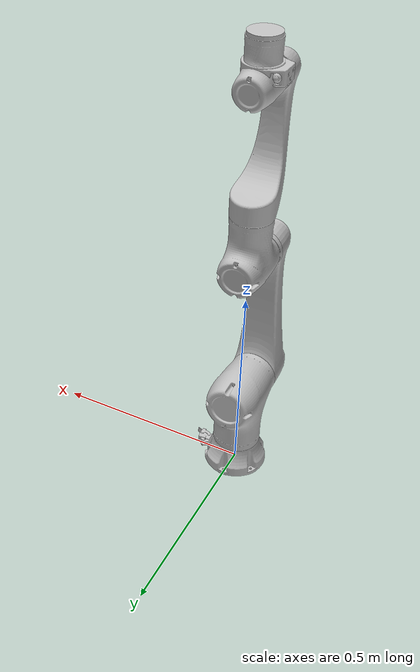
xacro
<robot
  name="elfin5" xmlns:xacro="http://www.ros.org/wiki/xacro">

  <xacro:include filename="$(find elfin_description)/urdf/materials.xacro" />

  <xacro:include filename="$(find elfin_description)/urdf/elfin_robot.gazebo" />

  <xacro:include filename="$(find elfin_description)/urdf/elfin_transmission.xacro" />

  <xacro:property name="PI" value="3.1415926535897931"/>

  <xacro:property name="density" value="3.09"/>

  <link name="world"/>

  <joint name="world_base" type="fixed">
    <origin
      xyz="0 0 0"
      rpy="0 0 0" />
    <parent
      link="world" />
    <child
      link="elfin_base_link" />
  </joint>

  <link name="elfin_base_link"/>

  <joint name="elfin_base_joint" type="fixed">
    <origin
      xyz="0 0 0"
      rpy="0 0 0" />
    <parent
      link="elfin_base_link" />
    <child
      link="elfin_base" />
  </joint>

   <link
    name="elfin_base">
    <inertial>
      <origin
        xyz="-0.000763828012447035 5.78534761012293E-06 0.0304416599943415"
        rpy="0 0 0" />
      <mass
        value="0.970239706050223" />
      <inertia
        ixx="0.00157696245666968"
        ixy="1.16231027909909E-07"
        ixz="-2.16838482265701E-05"
        iyy="0.00144565496079807"
        iyz="-6.75796232258151E-08"
        izz="0.00236570554301517" />
    </inertial>
    <visual>
      <origin
        xyz="0 0 0"
        rpy="0 0 0" />
      <geometry>
        <mesh
          filename="package://elfin_description/meshes/elfin5/elfin_base.STL" />
      </geometry>
      <material
        name="">
        <color
          rgba="0.752941176470588 0.752941176470588 0.752941176470588 1" />
      </material>
    </visual>
    <collision>
      <origin
        xyz="0 0 0"
        rpy="0 0 0" />
      <geometry>
        <mesh
          filename="package://elfin_description/meshes/elfin5/elfin_base.STL" />
      </geometry>
    </collision>
  </link>
  <link
    name="elfin_link1">
    <inertial>
      <origin
        xyz="2.74291280953301E-06 -0.00431106908088009 -0.0357493000420958"
        rpy="0 0 0" />
      <mass
        value="3.25128102774055" />
      <inertia
        ixx="0.0131139015939654"
        ixy="1.53830686193548E-07"
        ixz="4.14641049481189E-07"
        iyy="0.0123861178713592"
        iyz="0.00240614664669851"
        izz="0.00712273876232631" />
    </inertial>
    <visual>
      <origin
        xyz="0 0 0"
        rpy="0 0 0" />
      <geometry>
        <mesh
          filename="package://elfin_description/meshes/elfin5/elfin_link1.STL" />
      </geometry>
      <material
        name="">
        <color
          rgba="0.752941176470588 0.752941176470588 0.752941176470588 1" />
      </material>
    </visual>
    <collision>
      <origin
        xyz="0 0 0"
        rpy="0 0 0" />
      <geometry>
        <mesh
          filename="package://elfin_description/meshes/elfin5/elfin_link1.STL" />
      </geometry>
    </collision>
  </link>
  <joint
    name="elfin_joint1"
    type="revolute">
    <origin
      xyz="0 0 0.22"
      rpy="0 0 0" />
    <parent
      link="elfin_base" />
    <child
      link="elfin_link1" />
    <axis
      xyz="0 0 1" />
    <limit
      lower="-3.14"
      upper="3.14"
      effort="420"
      velocity="1.57" />
  </joint>
  <link
    name="elfin_link2">
    <inertial>
      <origin
        xyz="-4.61141935425826E-06 0.1591743105703 0.127676233728645"
        rpy="0 0 0" />
      <mass
        value="2.80251415493372" />
      <inertia
        ixx="0.0472004127058612"
        ixy="-3.78127975165949E-06"
        ixz="2.96484076164975E-07"
        iyy="0.00279445987467469"
        iyz="0.0015424585085081"
        izz="0.0478757132444163" />
    </inertial>
    <visual>
      <origin
        xyz="0 0 0"
        rpy="0 0 0" />
      <geometry>
        <mesh
          filename="package://elfin_description/meshes/elfin5/elfin_link2.STL" />
      </geometry>
      <material
        name="">
        <color
          rgba="0.752941176470588 0.752941176470588 0.752941176470588 1" />
      </material>
    </visual>
    <collision>
      <origin
        xyz="0 0 0"
        rpy="0 0 0" />
      <geometry>
        <mesh
          filename="package://elfin_description/meshes/elfin5/elfin_link2.STL" />
      </geometry>
    </collision>
  </link>
  <joint
    name="elfin_joint2"
    type="revolute">
    <origin
      xyz="0 0 0"
      rpy="1.5708 0 0" />
    <parent
      link="elfin_link1" />
    <child
      link="elfin_link2" />
    <axis
      xyz="0 0 1" />
    <limit
      lower="-2.35"
      upper="2.35"
      effort="420"
      velocity="1.57" />
  </joint>
  <link
    name="elfin_link3">
    <inertial>
      <origin
        xyz="0.0290082764878195 8.22344830496747E-06 -0.00396673307172194"
        rpy="0 0 0" />
      <mass
        value="1.985771603253" />
      <inertia
        ixx="0.00325219349943707"
        ixy="-2.70050556242264E-07"
        ixz="-0.00114506857457687"
        iyy="0.00594604197825752"
        iyz="7.00611683851371E-07"
        izz="0.00528005541994704" />
    </inertial>
    <visual>
      <origin
        xyz="0 0 0"
        rpy="0 0 0" />
      <geometry>
        <mesh
          filename="package://elfin_description/meshes/elfin5/elfin_link3.STL" />
      </geometry>
      <material
        name="">
        <color
          rgba="0.752941176470588 0.752941176470588 0.752941176470588 1" />
      </material>
    </visual>
    <collision>
      <origin
        xyz="0 0 0"
        rpy="0 0 0" />
      <geometry>
        <mesh
          filename="package://elfin_description/meshes/elfin5/elfin_link3.STL" />
      </geometry>
    </collision>
  </link>
  <joint
    name="elfin_joint3"
    type="revolute">
    <origin
      xyz="0 0.38 0"
      rpy="3.1416 0 1.5708" />
    <parent
      link="elfin_link2" />
    <child
      link="elfin_link3" />
    <axis
      xyz="0 0 1" />
    <limit
      lower="-2.61"
      upper="2.61"
      effort="200"
      velocity="1.57" />
  </joint>
  <link
    name="elfin_link4">
    <inertial>
      <origin
        xyz="-3.37325284266827E-05 -0.059246634833044 0.248712399920572"
        rpy="0 0 0" />
      <mass
        value="1.3966627675706" />
      <inertia
        ixx="0.0146417786566676"
        ixy="-1.72570245202171E-06"
        ixz="6.27583250069289E-06"
        iyy="0.0128389262643824"
        iyz="0.00385606704922265"
        izz="0.00311370666742545" />
    </inertial>
    <visual>
      <origin
        xyz="0 0 0"
        rpy="0 0 0" />
      <geometry>
        <mesh
          filename="package://elfin_description/meshes/elfin5/elfin_link4.STL" />
      </geometry>
      <material
        name="">
        <color
          rgba="0.752941176470588 0.752941176470588 0.752941176470588 1" />
      </material>
    </visual>
    <collision>
      <origin
        xyz="0 0 0"
        rpy="0 0 0" />
      <geometry>
        <mesh
          filename="package://elfin_description/meshes/elfin5/elfin_link4.STL" />
      </geometry>
    </collision>
  </link>
  <joint
    name="elfin_joint4"
    type="revolute">
    <origin
      xyz="0 0 0"
      rpy="1.5708 0 1.5708" />
    <parent
      link="elfin_link3" />
    <child
      link="elfin_link4" />
    <axis
      xyz="0 0 1" />
    <limit
      lower="-3.14"
      upper="3.14"
      effort="200"
      velocity="1.57" />
  </joint>
  <link
    name="elfin_link5">
    <inertial>
      <origin
        xyz="-1.05027528186624E-06 -0.0219935502961173 -0.00313939707023243"
        rpy="0 0 0" />
      <mass
        value="1.18717984150567" />
      <inertia
        ixx="0.00223607662459616"
        ixy="7.69598109537055E-08"
        ixz="1.87231135997621E-07"
        iyy="0.00135159849023817"
        iyz="0.000420977801546637"
        izz="0.00193236500760183" />
    </inertial>
    <visual>
      <origin
        xyz="0 0 0"
        rpy="0 0 0" />
      <geometry>
        <mesh
          filename="package://elfin_description/meshes/elfin5/elfin_link5.STL" />
      </geometry>
      <material
        name="">
        <color
          rgba="0.752941176470588 0.752941176470588 0.752941176470588 1" />
      </material>
    </visual>
    <collision>
      <origin
        xyz="0 0 0"
        rpy="0 0 0" />
      <geometry>
        <mesh
          filename="package://elfin_description/meshes/elfin5/elfin_link5.STL" />
      </geometry>
    </collision>
  </link>
  <joint
    name="elfin_joint5"
    type="revolute">
    <origin
      xyz="0 0 0.42"
      rpy="-1.5708 0 0" />
    <parent
      link="elfin_link4" />
    <child
      link="elfin_link5" />
    <axis
      xyz="0 0 1" />
    <limit
      lower="-2.56"
      upper="2.56"
      effort="69"
      velocity="1.57" />
  </joint>
  <link
    name="elfin_link6">
    <inertial>
      <origin
        xyz="-1.59841620089968E-05 -0.00034491847744483 0.128921909891105"
        rpy="0 0 0" />
      <mass
        value="0.281755133133711" />
      <inertia
        ixx="0.000141506869040406"
        ixy="-3.26513406770626E-08"
        ixz="7.38940963331507E-08"
        iyy="0.000144516478405932"
        iyz="-8.86072913302242E-08"
        izz="0.000252050888055838" />
    </inertial>
    <visual>
      <origin
        xyz="0 0 0"
        rpy="0 0 0" />
      <geometry>
        <mesh
          filename="package://elfin_description/meshes/elfin5/elfin_link6.STL" />
      </geometry>
      <material
        name="">
        <color
          rgba="0.752941176470588 0.752941176470588 0.752941176470588 1" />
      </material>
    </visual>
    <collision>
      <origin
        xyz="0 0 0"
        rpy="0 0 0" />
      <geometry>
        <mesh
          filename="package://elfin_description/meshes/elfin5/elfin_link6.STL" />
      </geometry>
    </collision>
  </link>
  <joint
    name="elfin_joint6"
    type="revolute">
    <origin
      xyz="0 0 0"
      rpy="1.5708 0 0" />
    <parent
      link="elfin_link5" />
    <child
      link="elfin_link6" />
    <axis
      xyz="0 0 1" />
    <limit
      lower="-3.14"
      upper="3.14"
      effort="69"
      velocity="1.57" />
  </joint>
  <link
    name="elfin_end_link"/>
  <joint
    name="elfin_end_joint"
    type="fixed">
    <origin
      xyz="0 0 0.1565"
      rpy="0 0 0" />
    <parent
      link="elfin_link6" />
    <child
      link="elfin_end_link" />
    <axis
      xyz="0 0 0" />
  </joint>

  <link name="elfin_dummy_gripper"/>

  <joint name="elfin_dummy_joint" type="fixed">
    <origin
      xyz="0 -0.0935 0"
      rpy="${PI/2} ${PI/2} 0" />
    <parent
      link="elfin_link6" />
    <child
      link="elfin_dummy_gripper" />
  </joint>

</robot>

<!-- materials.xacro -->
<robot xmlns:xacro="http://www.ros.org/wiki/xacro">

  <material name="black">
    <color rgba="0.0 0.0 0.0 1.0"/>
  </material>

  <material name="blue">
    <color rgba="0.0 0.0 0.8 1.0"/>
  </material>

  <material name="green">
    <color rgba="0.0 0.8 0.0 1.0"/>
  </material>

  <material name="grey">
    <color rgba="0.2 0.2 0.2 1.0"/>
  </material>

  <material name="orange">
    <color rgba="${255/255} ${108/255} ${10/255} 1.0"/>
  </material>

  <material name="brown">
    <color rgba="${222/255} ${207/255} ${195/255} 1.0"/>
  </material>

  <material name="red">
    <color rgba="0.8 0.0 0.0 1.0"/>
  </material>

  <material name="white">
    <color rgba="1.0 1.0 1.0 1.0"/>
  </material>

  <material name="metal">
    <color rgba="0.768627450980392 0.749019607843137 0.729411764705882 1" />
  </material>

  <material name="metal_grey">
    <color rgba="0.501960784313725 0.501960784313725 0.501960784313725 1" />
  </material>

  <material name="metal_white">
    <color rgba="0.866666666666667 0.866666666666667 0.890196078431373 1" />
  </material>

</robot>
